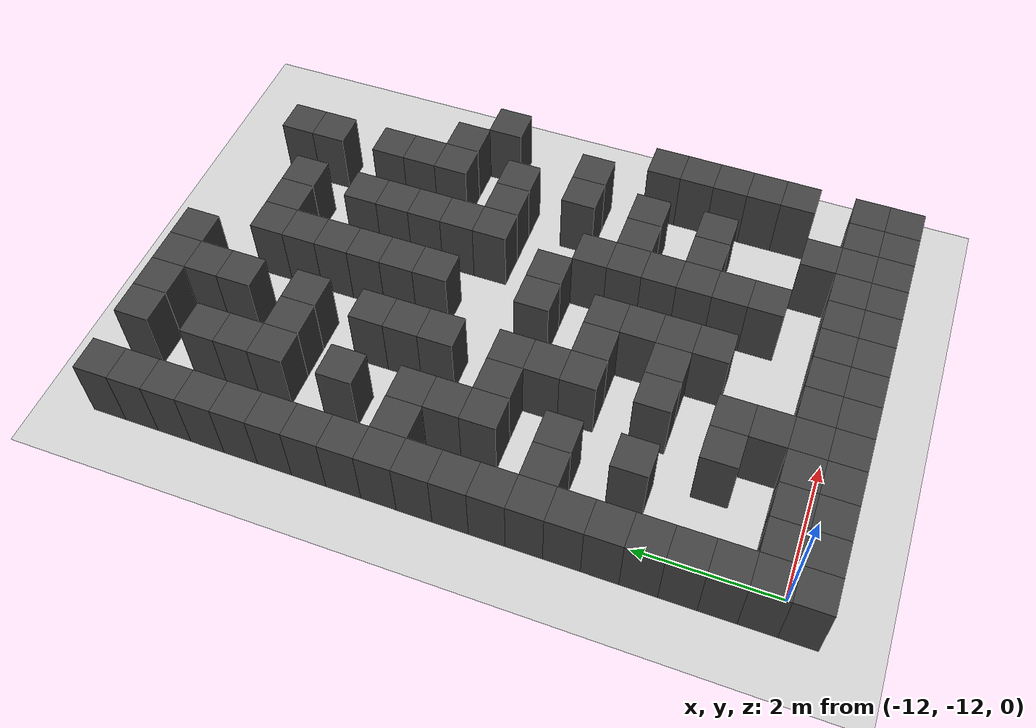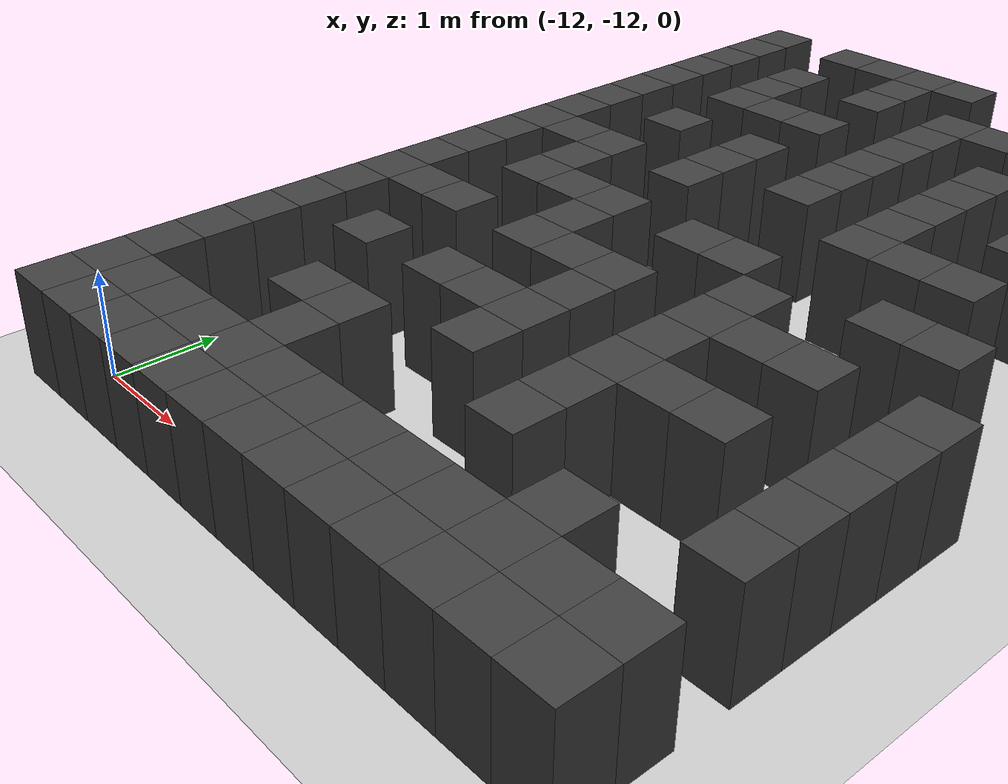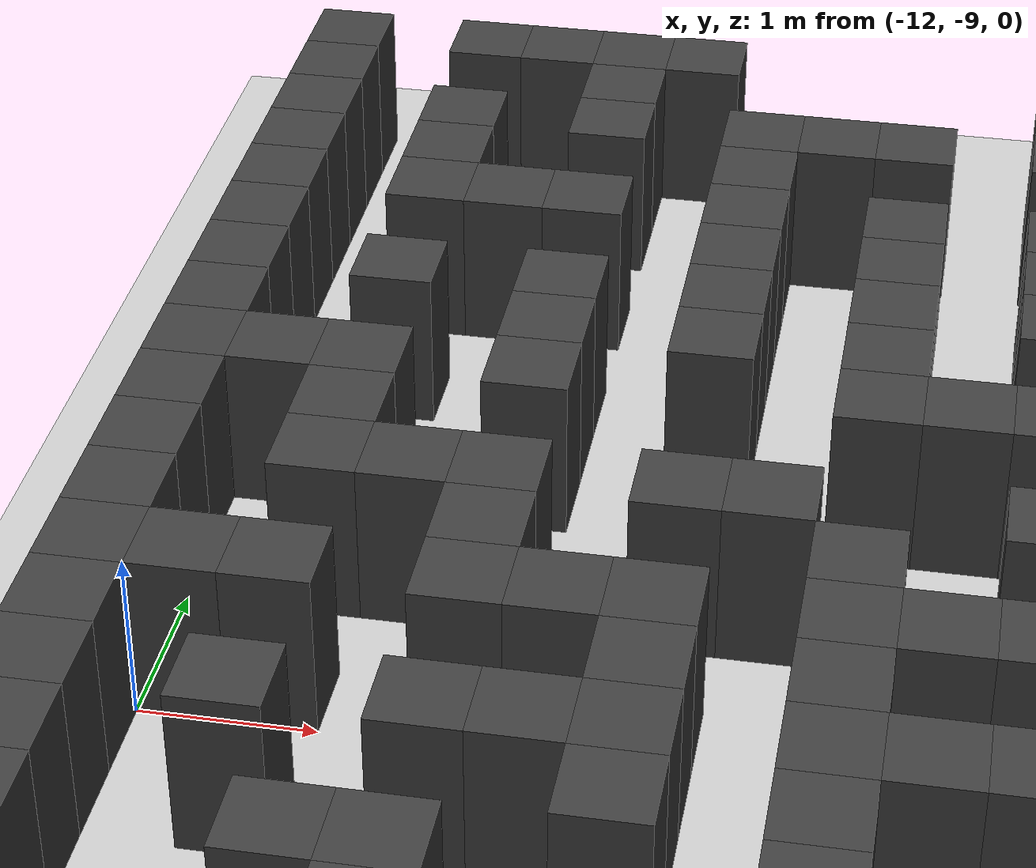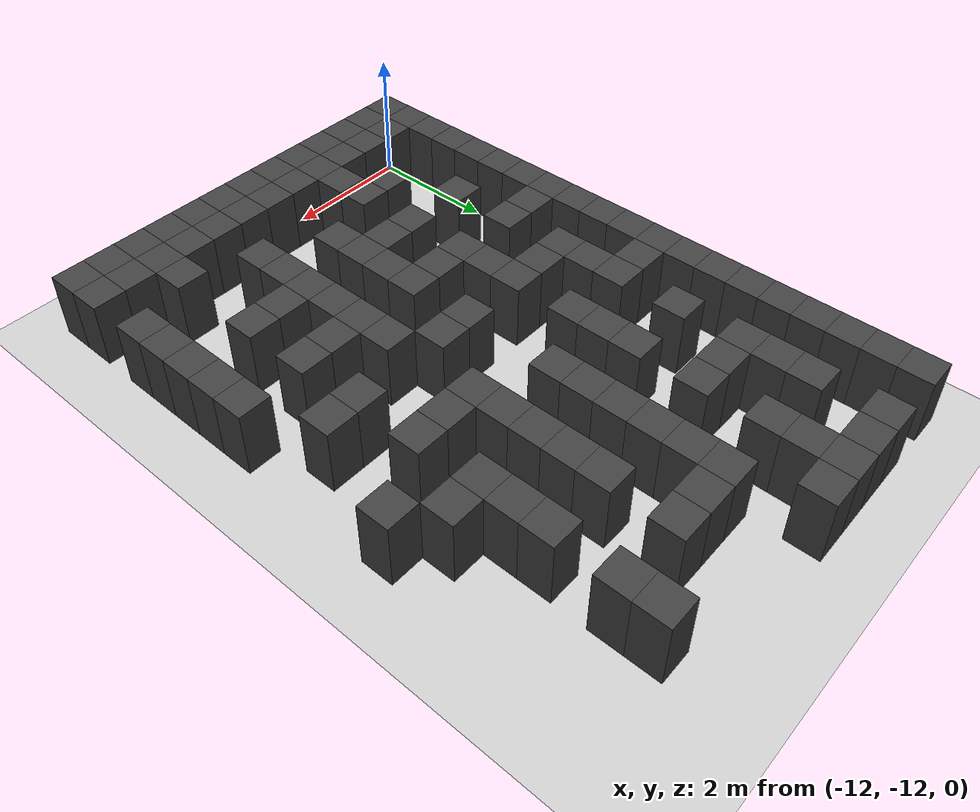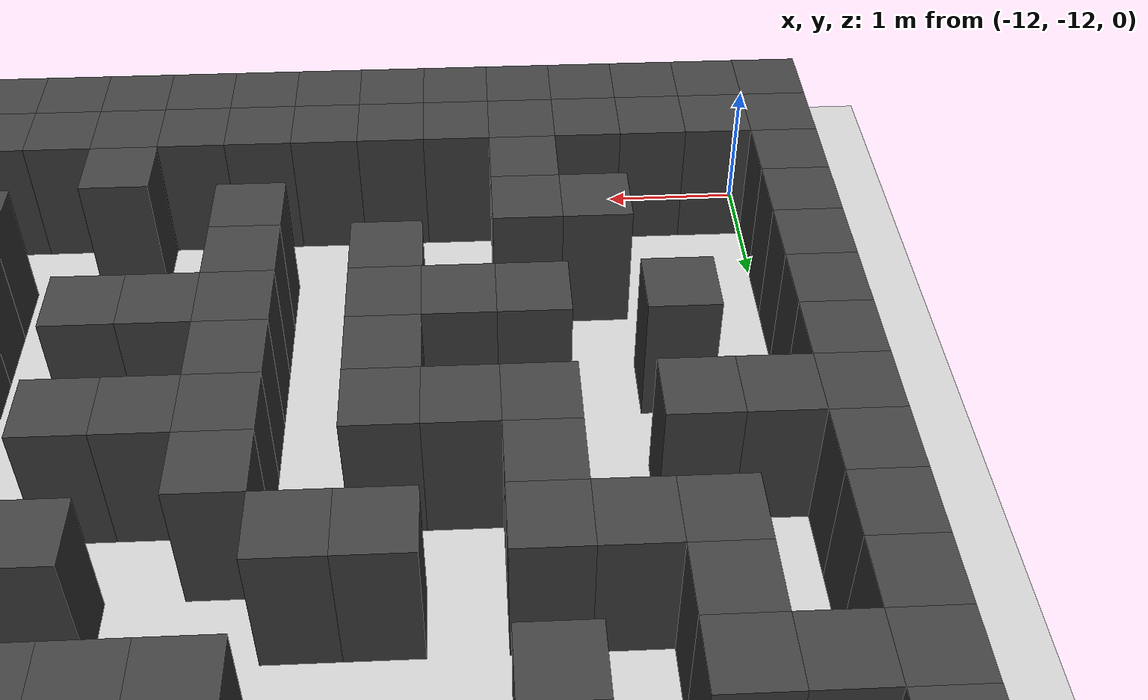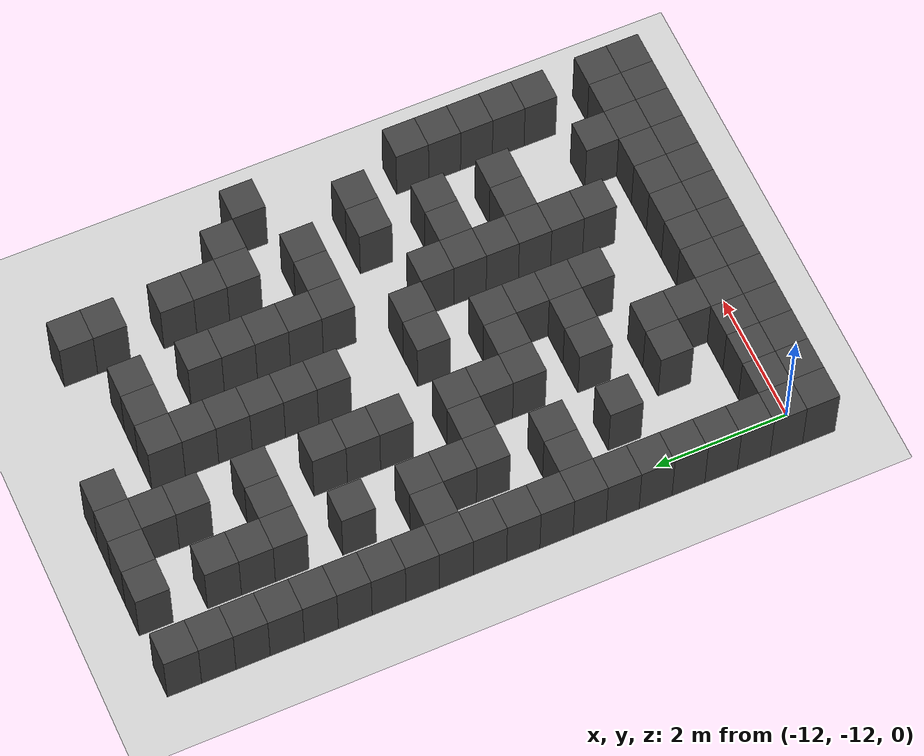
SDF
<sdf version="1.7">
 <world name="map_16048">
  <model name="ground_plane">
   <static>true</static>
   <link name="link">
    <collision name="collision">
     <geometry><plane><normal>0 0 1</normal><size>200 200</size></plane></geometry>
    </collision>
    <visual name="visual">
     <geometry><plane><normal>0 0 1</normal><size>200 200</size></plane></geometry>
     <material><ambient>0.8 0.8 0.8 1</ambient><diffuse>0.8 0.8 0.8 1</diffuse></material>
    </visual>
   </link>
  </model>
  <model name="maze_environment">
   <static>true</static>
   <link name="wall_712">
    <pose>-12.250 -2.750 0.500 0 0 0</pose>
    <collision name="col"><geometry><box><size>0.5 0.5 1.0</size></box></geometry></collision>
    <visual name="vis">
     <geometry><box><size>0.5 0.5 1.0</size></box></geometry>
     <material><ambient>0.15 0.15 0.15 1</ambient><diffuse>0.25 0.25 0.25 1</diffuse></material>
    </visual>
   </link>
   <link name="wall_713">
    <pose>-11.250 -2.750 0.500 0 0 0</pose>
    <collision name="col"><geometry><box><size>0.5 0.5 1.0</size></box></geometry></collision>
    <visual name="vis">
     <geometry><box><size>0.5 0.5 1.0</size></box></geometry>
     <material><ambient>0.15 0.15 0.15 1</ambient><diffuse>0.25 0.25 0.25 1</diffuse></material>
    </visual>
   </link>
   <link name="wall_714">
    <pose>-10.750 -2.750 0.500 0 0 0</pose>
    <collision name="col"><geometry><box><size>0.5 0.5 1.0</size></box></geometry></collision>
    <visual name="vis">
     <geometry><box><size>0.5 0.5 1.0</size></box></geometry>
     <material><ambient>0.15 0.15 0.15 1</ambient><diffuse>0.25 0.25 0.25 1</diffuse></material>
    </visual>
   </link>
   <link name="wall_715">
    <pose>-10.250 -2.750 0.500 0 0 0</pose>
    <collision name="col"><geometry><box><size>0.5 0.5 1.0</size></box></geometry></collision>
    <visual name="vis">
     <geometry><box><size>0.5 0.5 1.0</size></box></geometry>
     <material><ambient>0.15 0.15 0.15 1</ambient><diffuse>0.25 0.25 0.25 1</diffuse></material>
    </visual>
   </link>
   <link name="wall_716">
    <pose>-9.750 -2.750 0.500 0 0 0</pose>
    <collision name="col"><geometry><box><size>0.5 0.5 1.0</size></box></geometry></collision>
    <visual name="vis">
     <geometry><box><size>0.5 0.5 1.0</size></box></geometry>
     <material><ambient>0.15 0.15 0.15 1</ambient><diffuse>0.25 0.25 0.25 1</diffuse></material>
    </visual>
   </link>
   <link name="wall_748">
    <pose>-12.250 -3.250 0.500 0 0 0</pose>
    <collision name="col"><geometry><box><size>0.5 0.5 1.0</size></box></geometry></collision>
    <visual name="vis">
     <geometry><box><size>0.5 0.5 1.0</size></box></geometry>
     <material><ambient>0.15 0.15 0.15 1</ambient><diffuse>0.25 0.25 0.25 1</diffuse></material>
    </visual>
   </link>
   <link name="wall_749">
    <pose>-10.250 -3.250 0.500 0 0 0</pose>
    <collision name="col"><geometry><box><size>0.5 0.5 1.0</size></box></geometry></collision>
    <visual name="vis">
     <geometry><box><size>0.5 0.5 1.0</size></box></geometry>
     <material><ambient>0.15 0.15 0.15 1</ambient><diffuse>0.25 0.25 0.25 1</diffuse></material>
    </visual>
   </link>
   <link name="wall_750">
    <pose>-7.250 -3.250 0.500 0 0 0</pose>
    <collision name="col"><geometry><box><size>0.5 0.5 1.0</size></box></geometry></collision>
    <visual name="vis">
     <geometry><box><size>0.5 0.5 1.0</size></box></geometry>
     <material><ambient>0.15 0.15 0.15 1</ambient><diffuse>0.25 0.25 0.25 1</diffuse></material>
    </visual>
   </link>
   <link name="wall_761">
    <pose>-12.250 -3.750 0.500 0 0 0</pose>
    <collision name="col"><geometry><box><size>0.5 0.5 1.0</size></box></geometry></collision>
    <visual name="vis">
     <geometry><box><size>0.5 0.5 1.0</size></box></geometry>
     <material><ambient>0.15 0.15 0.15 1</ambient><diffuse>0.25 0.25 0.25 1</diffuse></material>
    </visual>
   </link>
   <link name="wall_762">
    <pose>-11.250 -3.750 0.500 0 0 0</pose>
    <collision name="col"><geometry><box><size>0.5 0.5 1.0</size></box></geometry></collision>
    <visual name="vis">
     <geometry><box><size>0.5 0.5 1.0</size></box></geometry>
     <material><ambient>0.15 0.15 0.15 1</ambient><diffuse>0.25 0.25 0.25 1</diffuse></material>
    </visual>
   </link>
   <link name="wall_763">
    <pose>-10.250 -3.750 0.500 0 0 0</pose>
    <collision name="col"><geometry><box><size>0.5 0.5 1.0</size></box></geometry></collision>
    <visual name="vis">
     <geometry><box><size>0.5 0.5 1.0</size></box></geometry>
     <material><ambient>0.15 0.15 0.15 1</ambient><diffuse>0.25 0.25 0.25 1</diffuse></material>
    </visual>
   </link>
   <link name="wall_764">
    <pose>-9.250 -3.750 0.500 0 0 0</pose>
    <collision name="col"><geometry><box><size>0.5 0.5 1.0</size></box></geometry></collision>
    <visual name="vis">
     <geometry><box><size>0.5 0.5 1.0</size></box></geometry>
     <material><ambient>0.15 0.15 0.15 1</ambient><diffuse>0.25 0.25 0.25 1</diffuse></material>
    </visual>
   </link>
   <link name="wall_765">
    <pose>-8.750 -3.750 0.500 0 0 0</pose>
    <collision name="col"><geometry><box><size>0.5 0.5 1.0</size></box></geometry></collision>
    <visual name="vis">
     <geometry><box><size>0.5 0.5 1.0</size></box></geometry>
     <material><ambient>0.15 0.15 0.15 1</ambient><diffuse>0.25 0.25 0.25 1</diffuse></material>
    </visual>
   </link>
   <link name="wall_766">
    <pose>-8.250 -3.750 0.500 0 0 0</pose>
    <collision name="col"><geometry><box><size>0.5 0.5 1.0</size></box></geometry></collision>
    <visual name="vis">
     <geometry><box><size>0.5 0.5 1.0</size></box></geometry>
     <material><ambient>0.15 0.15 0.15 1</ambient><diffuse>0.25 0.25 0.25 1</diffuse></material>
    </visual>
   </link>
   <link name="wall_767">
    <pose>-7.250 -3.750 0.500 0 0 0</pose>
    <collision name="col"><geometry><box><size>0.5 0.5 1.0</size></box></geometry></collision>
    <visual name="vis">
     <geometry><box><size>0.5 0.5 1.0</size></box></geometry>
     <material><ambient>0.15 0.15 0.15 1</ambient><diffuse>0.25 0.25 0.25 1</diffuse></material>
    </visual>
   </link>
   <link name="wall_796">
    <pose>-12.250 -4.250 0.500 0 0 0</pose>
    <collision name="col"><geometry><box><size>0.5 0.5 1.0</size></box></geometry></collision>
    <visual name="vis">
     <geometry><box><size>0.5 0.5 1.0</size></box></geometry>
     <material><ambient>0.15 0.15 0.15 1</ambient><diffuse>0.25 0.25 0.25 1</diffuse></material>
    </visual>
   </link>
   <link name="wall_797">
    <pose>-11.250 -4.250 0.500 0 0 0</pose>
    <collision name="col"><geometry><box><size>0.5 0.5 1.0</size></box></geometry></collision>
    <visual name="vis">
     <geometry><box><size>0.5 0.5 1.0</size></box></geometry>
     <material><ambient>0.15 0.15 0.15 1</ambient><diffuse>0.25 0.25 0.25 1</diffuse></material>
    </visual>
   </link>
   <link name="wall_798">
    <pose>-9.250 -4.250 0.500 0 0 0</pose>
    <collision name="col"><geometry><box><size>0.5 0.5 1.0</size></box></geometry></collision>
    <visual name="vis">
     <geometry><box><size>0.5 0.5 1.0</size></box></geometry>
     <material><ambient>0.15 0.15 0.15 1</ambient><diffuse>0.25 0.25 0.25 1</diffuse></material>
    </visual>
   </link>
   <link name="wall_809">
    <pose>-12.250 -4.750 0.500 0 0 0</pose>
    <collision name="col"><geometry><box><size>0.5 0.5 1.0</size></box></geometry></collision>
    <visual name="vis">
     <geometry><box><size>0.5 0.5 1.0</size></box></geometry>
     <material><ambient>0.15 0.15 0.15 1</ambient><diffuse>0.25 0.25 0.25 1</diffuse></material>
    </visual>
   </link>
   <link name="wall_810">
    <pose>-11.250 -4.750 0.500 0 0 0</pose>
    <collision name="col"><geometry><box><size>0.5 0.5 1.0</size></box></geometry></collision>
    <visual name="vis">
     <geometry><box><size>0.5 0.5 1.0</size></box></geometry>
     <material><ambient>0.15 0.15 0.15 1</ambient><diffuse>0.25 0.25 0.25 1</diffuse></material>
    </visual>
   </link>
   <link name="wall_811">
    <pose>-10.750 -4.750 0.500 0 0 0</pose>
    <collision name="col"><geometry><box><size>0.5 0.5 1.0</size></box></geometry></collision>
    <visual name="vis">
     <geometry><box><size>0.5 0.5 1.0</size></box></geometry>
     <material><ambient>0.15 0.15 0.15 1</ambient><diffuse>0.25 0.25 0.25 1</diffuse></material>
    </visual>
   </link>
   <link name="wall_812">
    <pose>-10.250 -4.750 0.500 0 0 0</pose>
    <collision name="col"><geometry><box><size>0.5 0.5 1.0</size></box></geometry></collision>
    <visual name="vis">
     <geometry><box><size>0.5 0.5 1.0</size></box></geometry>
     <material><ambient>0.15 0.15 0.15 1</ambient><diffuse>0.25 0.25 0.25 1</diffuse></material>
    </visual>
   </link>
   <link name="wall_813">
    <pose>-9.250 -4.750 0.500 0 0 0</pose>
    <collision name="col"><geometry><box><size>0.5 0.5 1.0</size></box></geometry></collision>
    <visual name="vis">
     <geometry><box><size>0.5 0.5 1.0</size></box></geometry>
     <material><ambient>0.15 0.15 0.15 1</ambient><diffuse>0.25 0.25 0.25 1</diffuse></material>
    </visual>
   </link>
   <link name="wall_814">
    <pose>-8.250 -4.750 0.500 0 0 0</pose>
    <collision name="col"><geometry><box><size>0.5 0.5 1.0</size></box></geometry></collision>
    <visual name="vis">
     <geometry><box><size>0.5 0.5 1.0</size></box></geometry>
     <material><ambient>0.15 0.15 0.15 1</ambient><diffuse>0.25 0.25 0.25 1</diffuse></material>
    </visual>
   </link>
   <link name="wall_815">
    <pose>-7.250 -4.750 0.500 0 0 0</pose>
    <collision name="col"><geometry><box><size>0.5 0.5 1.0</size></box></geometry></collision>
    <visual name="vis">
     <geometry><box><size>0.5 0.5 1.0</size></box></geometry>
     <material><ambient>0.15 0.15 0.15 1</ambient><diffuse>0.25 0.25 0.25 1</diffuse></material>
    </visual>
   </link>
   <link name="wall_843">
    <pose>-12.250 -5.250 0.500 0 0 0</pose>
    <collision name="col"><geometry><box><size>0.5 0.5 1.0</size></box></geometry></collision>
    <visual name="vis">
     <geometry><box><size>0.5 0.5 1.0</size></box></geometry>
     <material><ambient>0.15 0.15 0.15 1</ambient><diffuse>0.25 0.25 0.25 1</diffuse></material>
    </visual>
   </link>
   <link name="wall_844">
    <pose>-9.250 -5.250 0.500 0 0 0</pose>
    <collision name="col"><geometry><box><size>0.5 0.5 1.0</size></box></geometry></collision>
    <visual name="vis">
     <geometry><box><size>0.5 0.5 1.0</size></box></geometry>
     <material><ambient>0.15 0.15 0.15 1</ambient><diffuse>0.25 0.25 0.25 1</diffuse></material>
    </visual>
   </link>
   <link name="wall_845">
    <pose>-8.250 -5.250 0.500 0 0 0</pose>
    <collision name="col"><geometry><box><size>0.5 0.5 1.0</size></box></geometry></collision>
    <visual name="vis">
     <geometry><box><size>0.5 0.5 1.0</size></box></geometry>
     <material><ambient>0.15 0.15 0.15 1</ambient><diffuse>0.25 0.25 0.25 1</diffuse></material>
    </visual>
   </link>
   <link name="wall_846">
    <pose>-7.250 -5.250 0.500 0 0 0</pose>
    <collision name="col"><geometry><box><size>0.5 0.5 1.0</size></box></geometry></collision>
    <visual name="vis">
     <geometry><box><size>0.5 0.5 1.0</size></box></geometry>
     <material><ambient>0.15 0.15 0.15 1</ambient><diffuse>0.25 0.25 0.25 1</diffuse></material>
    </visual>
   </link>
   <link name="wall_856">
    <pose>-12.250 -5.750 0.500 0 0 0</pose>
    <collision name="col"><geometry><box><size>0.5 0.5 1.0</size></box></geometry></collision>
    <visual name="vis">
     <geometry><box><size>0.5 0.5 1.0</size></box></geometry>
     <material><ambient>0.15 0.15 0.15 1</ambient><diffuse>0.25 0.25 0.25 1</diffuse></material>
    </visual>
   </link>
   <link name="wall_857">
    <pose>-11.250 -5.750 0.500 0 0 0</pose>
    <collision name="col"><geometry><box><size>0.5 0.5 1.0</size></box></geometry></collision>
    <visual name="vis">
     <geometry><box><size>0.5 0.5 1.0</size></box></geometry>
     <material><ambient>0.15 0.15 0.15 1</ambient><diffuse>0.25 0.25 0.25 1</diffuse></material>
    </visual>
   </link>
   <link name="wall_858">
    <pose>-10.250 -5.750 0.500 0 0 0</pose>
    <collision name="col"><geometry><box><size>0.5 0.5 1.0</size></box></geometry></collision>
    <visual name="vis">
     <geometry><box><size>0.5 0.5 1.0</size></box></geometry>
     <material><ambient>0.15 0.15 0.15 1</ambient><diffuse>0.25 0.25 0.25 1</diffuse></material>
    </visual>
   </link>
   <link name="wall_859">
    <pose>-9.250 -5.750 0.500 0 0 0</pose>
    <collision name="col"><geometry><box><size>0.5 0.5 1.0</size></box></geometry></collision>
    <visual name="vis">
     <geometry><box><size>0.5 0.5 1.0</size></box></geometry>
     <material><ambient>0.15 0.15 0.15 1</ambient><diffuse>0.25 0.25 0.25 1</diffuse></material>
    </visual>
   </link>
   <link name="wall_860">
    <pose>-8.250 -5.750 0.500 0 0 0</pose>
    <collision name="col"><geometry><box><size>0.5 0.5 1.0</size></box></geometry></collision>
    <visual name="vis">
     <geometry><box><size>0.5 0.5 1.0</size></box></geometry>
     <material><ambient>0.15 0.15 0.15 1</ambient><diffuse>0.25 0.25 0.25 1</diffuse></material>
    </visual>
   </link>
   <link name="wall_861">
    <pose>-7.250 -5.750 0.500 0 0 0</pose>
    <collision name="col"><geometry><box><size>0.5 0.5 1.0</size></box></geometry></collision>
    <visual name="vis">
     <geometry><box><size>0.5 0.5 1.0</size></box></geometry>
     <material><ambient>0.15 0.15 0.15 1</ambient><diffuse>0.25 0.25 0.25 1</diffuse></material>
    </visual>
   </link>
   <link name="wall_862">
    <pose>-6.750 -5.750 0.500 0 0 0</pose>
    <collision name="col"><geometry><box><size>0.5 0.5 1.0</size></box></geometry></collision>
    <visual name="vis">
     <geometry><box><size>0.5 0.5 1.0</size></box></geometry>
     <material><ambient>0.15 0.15 0.15 1</ambient><diffuse>0.25 0.25 0.25 1</diffuse></material>
    </visual>
   </link>
   <link name="wall_890">
    <pose>-12.250 -6.250 0.500 0 0 0</pose>
    <collision name="col"><geometry><box><size>0.5 0.5 1.0</size></box></geometry></collision>
    <visual name="vis">
     <geometry><box><size>0.5 0.5 1.0</size></box></geometry>
     <material><ambient>0.15 0.15 0.15 1</ambient><diffuse>0.25 0.25 0.25 1</diffuse></material>
    </visual>
   </link>
   <link name="wall_891">
    <pose>-10.250 -6.250 0.500 0 0 0</pose>
    <collision name="col"><geometry><box><size>0.5 0.5 1.0</size></box></geometry></collision>
    <visual name="vis">
     <geometry><box><size>0.5 0.5 1.0</size></box></geometry>
     <material><ambient>0.15 0.15 0.15 1</ambient><diffuse>0.25 0.25 0.25 1</diffuse></material>
    </visual>
   </link>
   <link name="wall_892">
    <pose>-9.250 -6.250 0.500 0 0 0</pose>
    <collision name="col"><geometry><box><size>0.5 0.5 1.0</size></box></geometry></collision>
    <visual name="vis">
     <geometry><box><size>0.5 0.5 1.0</size></box></geometry>
     <material><ambient>0.15 0.15 0.15 1</ambient><diffuse>0.25 0.25 0.25 1</diffuse></material>
    </visual>
   </link>
   <link name="wall_893">
    <pose>-8.250 -6.250 0.500 0 0 0</pose>
    <collision name="col"><geometry><box><size>0.5 0.5 1.0</size></box></geometry></collision>
    <visual name="vis">
     <geometry><box><size>0.5 0.5 1.0</size></box></geometry>
     <material><ambient>0.15 0.15 0.15 1</ambient><diffuse>0.25 0.25 0.25 1</diffuse></material>
    </visual>
   </link>
   <link name="wall_894">
    <pose>-6.250 -6.250 0.500 0 0 0</pose>
    <collision name="col"><geometry><box><size>0.5 0.5 1.0</size></box></geometry></collision>
    <visual name="vis">
     <geometry><box><size>0.5 0.5 1.0</size></box></geometry>
     <material><ambient>0.15 0.15 0.15 1</ambient><diffuse>0.25 0.25 0.25 1</diffuse></material>
    </visual>
   </link>
   <link name="wall_905">
    <pose>-12.250 -6.750 0.500 0 0 0</pose>
    <collision name="col"><geometry><box><size>0.5 0.5 1.0</size></box></geometry></collision>
    <visual name="vis">
     <geometry><box><size>0.5 0.5 1.0</size></box></geometry>
     <material><ambient>0.15 0.15 0.15 1</ambient><diffuse>0.25 0.25 0.25 1</diffuse></material>
    </visual>
   </link>
   <link name="wall_906">
    <pose>-11.750 -6.750 0.500 0 0 0</pose>
    <collision name="col"><geometry><box><size>0.5 0.5 1.0</size></box></geometry></collision>
    <visual name="vis">
     <geometry><box><size>0.5 0.5 1.0</size></box></geometry>
     <material><ambient>0.15 0.15 0.15 1</ambient><diffuse>0.25 0.25 0.25 1</diffuse></material>
    </visual>
   </link>
   <link name="wall_907">
    <pose>-11.250 -6.750 0.500 0 0 0</pose>
    <collision name="col"><geometry><box><size>0.5 0.5 1.0</size></box></geometry></collision>
    <visual name="vis">
     <geometry><box><size>0.5 0.5 1.0</size></box></geometry>
     <material><ambient>0.15 0.15 0.15 1</ambient><diffuse>0.25 0.25 0.25 1</diffuse></material>
    </visual>
   </link>
   <link name="wall_908">
    <pose>-10.250 -6.750 0.500 0 0 0</pose>
    <collision name="col"><geometry><box><size>0.5 0.5 1.0</size></box></geometry></collision>
    <visual name="vis">
     <geometry><box><size>0.5 0.5 1.0</size></box></geometry>
     <material><ambient>0.15 0.15 0.15 1</ambient><diffuse>0.25 0.25 0.25 1</diffuse></material>
    </visual>
   </link>
   <link name="wall_909">
    <pose>-8.250 -6.750 0.500 0 0 0</pose>
    <collision name="col"><geometry><box><size>0.5 0.5 1.0</size></box></geometry></collision>
    <visual name="vis">
     <geometry><box><size>0.5 0.5 1.0</size></box></geometry>
     <material><ambient>0.15 0.15 0.15 1</ambient><diffuse>0.25 0.25 0.25 1</diffuse></material>
    </visual>
   </link>
   <link name="wall_910">
    <pose>-7.750 -6.750 0.500 0 0 0</pose>
    <collision name="col"><geometry><box><size>0.5 0.5 1.0</size></box></geometry></collision>
    <visual name="vis">
     <geometry><box><size>0.5 0.5 1.0</size></box></geometry>
     <material><ambient>0.15 0.15 0.15 1</ambient><diffuse>0.25 0.25 0.25 1</diffuse></material>
    </visual>
   </link>
   <link name="wall_911">
    <pose>-7.250 -6.750 0.500 0 0 0</pose>
    <collision name="col"><geometry><box><size>0.5 0.5 1.0</size></box></geometry></collision>
    <visual name="vis">
     <geometry><box><size>0.5 0.5 1.0</size></box></geometry>
     <material><ambient>0.15 0.15 0.15 1</ambient><diffuse>0.25 0.25 0.25 1</diffuse></material>
    </visual>
   </link>
   <link name="wall_936">
    <pose>-12.250 -7.250 0.500 0 0 0</pose>
    <collision name="col"><geometry><box><size>0.5 0.5 1.0</size></box></geometry></collision>
    <visual name="vis">
     <geometry><box><size>0.5 0.5 1.0</size></box></geometry>
     <material><ambient>0.15 0.15 0.15 1</ambient><diffuse>0.25 0.25 0.25 1</diffuse></material>
    </visual>
   </link>
   <link name="wall_937">
    <pose>-11.250 -7.250 0.500 0 0 0</pose>
    <collision name="col"><geometry><box><size>0.5 0.5 1.0</size></box></geometry></collision>
    <visual name="vis">
     <geometry><box><size>0.5 0.5 1.0</size></box></geometry>
     <material><ambient>0.15 0.15 0.15 1</ambient><diffuse>0.25 0.25 0.25 1</diffuse></material>
    </visual>
   </link>
   <link name="wall_946">
    <pose>-12.250 -7.750 0.500 0 0 0</pose>
    <collision name="col"><geometry><box><size>0.5 0.5 1.0</size></box></geometry></collision>
    <visual name="vis">
     <geometry><box><size>0.5 0.5 1.0</size></box></geometry>
     <material><ambient>0.15 0.15 0.15 1</ambient><diffuse>0.25 0.25 0.25 1</diffuse></material>
    </visual>
   </link>
   <link name="wall_947">
    <pose>-11.250 -7.750 0.500 0 0 0</pose>
    <collision name="col"><geometry><box><size>0.5 0.5 1.0</size></box></geometry></collision>
    <visual name="vis">
     <geometry><box><size>0.5 0.5 1.0</size></box></geometry>
     <material><ambient>0.15 0.15 0.15 1</ambient><diffuse>0.25 0.25 0.25 1</diffuse></material>
    </visual>
   </link>
   <link name="wall_948">
    <pose>-10.750 -7.750 0.500 0 0 0</pose>
    <collision name="col"><geometry><box><size>0.5 0.5 1.0</size></box></geometry></collision>
    <visual name="vis">
     <geometry><box><size>0.5 0.5 1.0</size></box></geometry>
     <material><ambient>0.15 0.15 0.15 1</ambient><diffuse>0.25 0.25 0.25 1</diffuse></material>
    </visual>
   </link>
   <link name="wall_949">
    <pose>-10.250 -7.750 0.500 0 0 0</pose>
    <collision name="col"><geometry><box><size>0.5 0.5 1.0</size></box></geometry></collision>
    <visual name="vis">
     <geometry><box><size>0.5 0.5 1.0</size></box></geometry>
     <material><ambient>0.15 0.15 0.15 1</ambient><diffuse>0.25 0.25 0.25 1</diffuse></material>
    </visual>
   </link>
   <link name="wall_950">
    <pose>-9.250 -7.750 0.500 0 0 0</pose>
    <collision name="col"><geometry><box><size>0.5 0.5 1.0</size></box></geometry></collision>
    <visual name="vis">
     <geometry><box><size>0.5 0.5 1.0</size></box></geometry>
     <material><ambient>0.15 0.15 0.15 1</ambient><diffuse>0.25 0.25 0.25 1</diffuse></material>
    </visual>
   </link>
   <link name="wall_951">
    <pose>-8.750 -7.750 0.500 0 0 0</pose>
    <collision name="col"><geometry><box><size>0.5 0.5 1.0</size></box></geometry></collision>
    <visual name="vis">
     <geometry><box><size>0.5 0.5 1.0</size></box></geometry>
     <material><ambient>0.15 0.15 0.15 1</ambient><diffuse>0.25 0.25 0.25 1</diffuse></material>
    </visual>
   </link>
   <link name="wall_952">
    <pose>-7.250 -7.750 0.500 0 0 0</pose>
    <collision name="col"><geometry><box><size>0.5 0.5 1.0</size></box></geometry></collision>
    <visual name="vis">
     <geometry><box><size>0.5 0.5 1.0</size></box></geometry>
     <material><ambient>0.15 0.15 0.15 1</ambient><diffuse>0.25 0.25 0.25 1</diffuse></material>
    </visual>
   </link>
   <link name="wall_953">
    <pose>-6.750 -7.750 0.500 0 0 0</pose>
    <collision name="col"><geometry><box><size>0.5 0.5 1.0</size></box></geometry></collision>
    <visual name="vis">
     <geometry><box><size>0.5 0.5 1.0</size></box></geometry>
     <material><ambient>0.15 0.15 0.15 1</ambient><diffuse>0.25 0.25 0.25 1</diffuse></material>
    </visual>
   </link>
   <link name="wall_981">
    <pose>-12.250 -8.250 0.500 0 0 0</pose>
    <collision name="col"><geometry><box><size>0.5 0.5 1.0</size></box></geometry></collision>
    <visual name="vis">
     <geometry><box><size>0.5 0.5 1.0</size></box></geometry>
     <material><ambient>0.15 0.15 0.15 1</ambient><diffuse>0.25 0.25 0.25 1</diffuse></material>
    </visual>
   </link>
   <link name="wall_982">
    <pose>-10.250 -8.250 0.500 0 0 0</pose>
    <collision name="col"><geometry><box><size>0.5 0.5 1.0</size></box></geometry></collision>
    <visual name="vis">
     <geometry><box><size>0.5 0.5 1.0</size></box></geometry>
     <material><ambient>0.15 0.15 0.15 1</ambient><diffuse>0.25 0.25 0.25 1</diffuse></material>
    </visual>
   </link>
   <link name="wall_983">
    <pose>-8.250 -8.250 0.500 0 0 0</pose>
    <collision name="col"><geometry><box><size>0.5 0.5 1.0</size></box></geometry></collision>
    <visual name="vis">
     <geometry><box><size>0.5 0.5 1.0</size></box></geometry>
     <material><ambient>0.15 0.15 0.15 1</ambient><diffuse>0.25 0.25 0.25 1</diffuse></material>
    </visual>
   </link>
   <link name="wall_995">
    <pose>-12.250 -8.750 0.500 0 0 0</pose>
    <collision name="col"><geometry><box><size>0.5 0.5 1.0</size></box></geometry></collision>
    <visual name="vis">
     <geometry><box><size>0.5 0.5 1.0</size></box></geometry>
     <material><ambient>0.15 0.15 0.15 1</ambient><diffuse>0.25 0.25 0.25 1</diffuse></material>
    </visual>
   </link>
   <link name="wall_996">
    <pose>-11.750 -8.750 0.500 0 0 0</pose>
    <collision name="col"><geometry><box><size>0.5 0.5 1.0</size></box></geometry></collision>
    <visual name="vis">
     <geometry><box><size>0.5 0.5 1.0</size></box></geometry>
     <material><ambient>0.15 0.15 0.15 1</ambient><diffuse>0.25 0.25 0.25 1</diffuse></material>
    </visual>
   </link>
   <link name="wall_997">
    <pose>-11.250 -8.750 0.500 0 0 0</pose>
    <collision name="col"><geometry><box><size>0.5 0.5 1.0</size></box></geometry></collision>
    <visual name="vis">
     <geometry><box><size>0.5 0.5 1.0</size></box></geometry>
     <material><ambient>0.15 0.15 0.15 1</ambient><diffuse>0.25 0.25 0.25 1</diffuse></material>
    </visual>
   </link>
   <link name="wall_998">
    <pose>-10.250 -8.750 0.500 0 0 0</pose>
    <collision name="col"><geometry><box><size>0.5 0.5 1.0</size></box></geometry></collision>
    <visual name="vis">
     <geometry><box><size>0.5 0.5 1.0</size></box></geometry>
     <material><ambient>0.15 0.15 0.15 1</ambient><diffuse>0.25 0.25 0.25 1</diffuse></material>
    </visual>
   </link>
   <link name="wall_999">
    <pose>-9.750 -8.750 0.500 0 0 0</pose>
    <collision name="col"><geometry><box><size>0.5 0.5 1.0</size></box></geometry></collision>
    <visual name="vis">
     <geometry><box><size>0.5 0.5 1.0</size></box></geometry>
     <material><ambient>0.15 0.15 0.15 1</ambient><diffuse>0.25 0.25 0.25 1</diffuse></material>
    </visual>
   </link>
   <link name="wall_1000">
    <pose>-9.250 -8.750 0.500 0 0 0</pose>
    <collision name="col"><geometry><box><size>0.5 0.5 1.0</size></box></geometry></collision>
    <visual name="vis">
     <geometry><box><size>0.5 0.5 1.0</size></box></geometry>
     <material><ambient>0.15 0.15 0.15 1</ambient><diffuse>0.25 0.25 0.25 1</diffuse></material>
    </visual>
   </link>
   <link name="wall_1001">
    <pose>-8.250 -8.750 0.500 0 0 0</pose>
    <collision name="col"><geometry><box><size>0.5 0.5 1.0</size></box></geometry></collision>
    <visual name="vis">
     <geometry><box><size>0.5 0.5 1.0</size></box></geometry>
     <material><ambient>0.15 0.15 0.15 1</ambient><diffuse>0.25 0.25 0.25 1</diffuse></material>
    </visual>
   </link>
   <link name="wall_1002">
    <pose>-7.750 -8.750 0.500 0 0 0</pose>
    <collision name="col"><geometry><box><size>0.5 0.5 1.0</size></box></geometry></collision>
    <visual name="vis">
     <geometry><box><size>0.5 0.5 1.0</size></box></geometry>
     <material><ambient>0.15 0.15 0.15 1</ambient><diffuse>0.25 0.25 0.25 1</diffuse></material>
    </visual>
   </link>
   <link name="wall_1003">
    <pose>-7.250 -8.750 0.500 0 0 0</pose>
    <collision name="col"><geometry><box><size>0.5 0.5 1.0</size></box></geometry></collision>
    <visual name="vis">
     <geometry><box><size>0.5 0.5 1.0</size></box></geometry>
     <material><ambient>0.15 0.15 0.15 1</ambient><diffuse>0.25 0.25 0.25 1</diffuse></material>
    </visual>
   </link>
   <link name="wall_1004">
    <pose>-6.250 -8.750 0.500 0 0 0</pose>
    <collision name="col"><geometry><box><size>0.5 0.5 1.0</size></box></geometry></collision>
    <visual name="vis">
     <geometry><box><size>0.5 0.5 1.0</size></box></geometry>
     <material><ambient>0.15 0.15 0.15 1</ambient><diffuse>0.25 0.25 0.25 1</diffuse></material>
    </visual>
   </link>
   <link name="wall_1031">
    <pose>-12.250 -9.250 0.500 0 0 0</pose>
    <collision name="col"><geometry><box><size>0.5 0.5 1.0</size></box></geometry></collision>
    <visual name="vis">
     <geometry><box><size>0.5 0.5 1.0</size></box></geometry>
     <material><ambient>0.15 0.15 0.15 1</ambient><diffuse>0.25 0.25 0.25 1</diffuse></material>
    </visual>
   </link>
   <link name="wall_1032">
    <pose>-9.250 -9.250 0.500 0 0 0</pose>
    <collision name="col"><geometry><box><size>0.5 0.5 1.0</size></box></geometry></collision>
    <visual name="vis">
     <geometry><box><size>0.5 0.5 1.0</size></box></geometry>
     <material><ambient>0.15 0.15 0.15 1</ambient><diffuse>0.25 0.25 0.25 1</diffuse></material>
    </visual>
   </link>
   <link name="wall_1033">
    <pose>-8.250 -9.250 0.500 0 0 0</pose>
    <collision name="col"><geometry><box><size>0.5 0.5 1.0</size></box></geometry></collision>
    <visual name="vis">
     <geometry><box><size>0.5 0.5 1.0</size></box></geometry>
     <material><ambient>0.15 0.15 0.15 1</ambient><diffuse>0.25 0.25 0.25 1</diffuse></material>
    </visual>
   </link>
   <link name="wall_1034">
    <pose>-6.250 -9.250 0.500 0 0 0</pose>
    <collision name="col"><geometry><box><size>0.5 0.5 1.0</size></box></geometry></collision>
    <visual name="vis">
     <geometry><box><size>0.5 0.5 1.0</size></box></geometry>
     <material><ambient>0.15 0.15 0.15 1</ambient><diffuse>0.25 0.25 0.25 1</diffuse></material>
    </visual>
   </link>
   <link name="wall_1041">
    <pose>-12.250 -9.750 0.500 0 0 0</pose>
    <collision name="col"><geometry><box><size>0.5 0.5 1.0</size></box></geometry></collision>
    <visual name="vis">
     <geometry><box><size>0.5 0.5 1.0</size></box></geometry>
     <material><ambient>0.15 0.15 0.15 1</ambient><diffuse>0.25 0.25 0.25 1</diffuse></material>
    </visual>
   </link>
   <link name="wall_1042">
    <pose>-11.250 -9.750 0.500 0 0 0</pose>
    <collision name="col"><geometry><box><size>0.5 0.5 1.0</size></box></geometry></collision>
    <visual name="vis">
     <geometry><box><size>0.5 0.5 1.0</size></box></geometry>
     <material><ambient>0.15 0.15 0.15 1</ambient><diffuse>0.25 0.25 0.25 1</diffuse></material>
    </visual>
   </link>
   <link name="wall_1043">
    <pose>-10.250 -9.750 0.500 0 0 0</pose>
    <collision name="col"><geometry><box><size>0.5 0.5 1.0</size></box></geometry></collision>
    <visual name="vis">
     <geometry><box><size>0.5 0.5 1.0</size></box></geometry>
     <material><ambient>0.15 0.15 0.15 1</ambient><diffuse>0.25 0.25 0.25 1</diffuse></material>
    </visual>
   </link>
   <link name="wall_1044">
    <pose>-9.750 -9.750 0.500 0 0 0</pose>
    <collision name="col"><geometry><box><size>0.5 0.5 1.0</size></box></geometry></collision>
    <visual name="vis">
     <geometry><box><size>0.5 0.5 1.0</size></box></geometry>
     <material><ambient>0.15 0.15 0.15 1</ambient><diffuse>0.25 0.25 0.25 1</diffuse></material>
    </visual>
   </link>
   <link name="wall_1045">
    <pose>-9.250 -9.750 0.500 0 0 0</pose>
    <collision name="col"><geometry><box><size>0.5 0.5 1.0</size></box></geometry></collision>
    <visual name="vis">
     <geometry><box><size>0.5 0.5 1.0</size></box></geometry>
     <material><ambient>0.15 0.15 0.15 1</ambient><diffuse>0.25 0.25 0.25 1</diffuse></material>
    </visual>
   </link>
   <link name="wall_1046">
    <pose>-8.250 -9.750 0.500 0 0 0</pose>
    <collision name="col"><geometry><box><size>0.5 0.5 1.0</size></box></geometry></collision>
    <visual name="vis">
     <geometry><box><size>0.5 0.5 1.0</size></box></geometry>
     <material><ambient>0.15 0.15 0.15 1</ambient><diffuse>0.25 0.25 0.25 1</diffuse></material>
    </visual>
   </link>
   <link name="wall_1047">
    <pose>-7.750 -9.750 0.500 0 0 0</pose>
    <collision name="col"><geometry><box><size>0.5 0.5 1.0</size></box></geometry></collision>
    <visual name="vis">
     <geometry><box><size>0.5 0.5 1.0</size></box></geometry>
     <material><ambient>0.15 0.15 0.15 1</ambient><diffuse>0.25 0.25 0.25 1</diffuse></material>
    </visual>
   </link>
   <link name="wall_1048">
    <pose>-7.250 -9.750 0.500 0 0 0</pose>
    <collision name="col"><geometry><box><size>0.5 0.5 1.0</size></box></geometry></collision>
    <visual name="vis">
     <geometry><box><size>0.5 0.5 1.0</size></box></geometry>
     <material><ambient>0.15 0.15 0.15 1</ambient><diffuse>0.25 0.25 0.25 1</diffuse></material>
    </visual>
   </link>
   <link name="wall_1049">
    <pose>-6.250 -9.750 0.500 0 0 0</pose>
    <collision name="col"><geometry><box><size>0.5 0.5 1.0</size></box></geometry></collision>
    <visual name="vis">
     <geometry><box><size>0.5 0.5 1.0</size></box></geometry>
     <material><ambient>0.15 0.15 0.15 1</ambient><diffuse>0.25 0.25 0.25 1</diffuse></material>
    </visual>
   </link>
   <link name="wall_1083">
    <pose>-12.250 -10.250 0.500 0 0 0</pose>
    <collision name="col"><geometry><box><size>0.5 0.5 1.0</size></box></geometry></collision>
    <visual name="vis">
     <geometry><box><size>0.5 0.5 1.0</size></box></geometry>
     <material><ambient>0.15 0.15 0.15 1</ambient><diffuse>0.25 0.25 0.25 1</diffuse></material>
    </visual>
   </link>
   <link name="wall_1084">
    <pose>-9.250 -10.250 0.500 0 0 0</pose>
    <collision name="col"><geometry><box><size>0.5 0.5 1.0</size></box></geometry></collision>
    <visual name="vis">
     <geometry><box><size>0.5 0.5 1.0</size></box></geometry>
     <material><ambient>0.15 0.15 0.15 1</ambient><diffuse>0.25 0.25 0.25 1</diffuse></material>
    </visual>
   </link>
   <link name="wall_1085">
    <pose>-8.250 -10.250 0.500 0 0 0</pose>
    <collision name="col"><geometry><box><size>0.5 0.5 1.0</size></box></geometry></collision>
    <visual name="vis">
     <geometry><box><size>0.5 0.5 1.0</size></box></geometry>
     <material><ambient>0.15 0.15 0.15 1</ambient><diffuse>0.25 0.25 0.25 1</diffuse></material>
    </visual>
   </link>
   <link name="wall_1086">
    <pose>-6.250 -10.250 0.500 0 0 0</pose>
    <collision name="col"><geometry><box><size>0.5 0.5 1.0</size></box></geometry></collision>
    <visual name="vis">
     <geometry><box><size>0.5 0.5 1.0</size></box></geometry>
     <material><ambient>0.15 0.15 0.15 1</ambient><diffuse>0.25 0.25 0.25 1</diffuse></material>
    </visual>
   </link>
   <link name="wall_1095">
    <pose>-12.250 -10.750 0.500 0 0 0</pose>
    <collision name="col"><geometry><box><size>0.5 0.5 1.0</size></box></geometry></collision>
    <visual name="vis">
     <geometry><box><size>0.5 0.5 1.0</size></box></geometry>
     <material><ambient>0.15 0.15 0.15 1</ambient><diffuse>0.25 0.25 0.25 1</diffuse></material>
    </visual>
   </link>
   <link name="wall_1096">
    <pose>-10.750 -10.750 0.500 0 0 0</pose>
    <collision name="col"><geometry><box><size>0.5 0.5 1.0</size></box></geometry></collision>
    <visual name="vis">
     <geometry><box><size>0.5 0.5 1.0</size></box></geometry>
     <material><ambient>0.15 0.15 0.15 1</ambient><diffuse>0.25 0.25 0.25 1</diffuse></material>
    </visual>
   </link>
   <link name="wall_1097">
    <pose>-10.250 -10.750 0.500 0 0 0</pose>
    <collision name="col"><geometry><box><size>0.5 0.5 1.0</size></box></geometry></collision>
    <visual name="vis">
     <geometry><box><size>0.5 0.5 1.0</size></box></geometry>
     <material><ambient>0.15 0.15 0.15 1</ambient><diffuse>0.25 0.25 0.25 1</diffuse></material>
    </visual>
   </link>
   <link name="wall_1098">
    <pose>-8.250 -10.750 0.500 0 0 0</pose>
    <collision name="col"><geometry><box><size>0.5 0.5 1.0</size></box></geometry></collision>
    <visual name="vis">
     <geometry><box><size>0.5 0.5 1.0</size></box></geometry>
     <material><ambient>0.15 0.15 0.15 1</ambient><diffuse>0.25 0.25 0.25 1</diffuse></material>
    </visual>
   </link>
   <link name="wall_1099">
    <pose>-6.250 -10.750 0.500 0 0 0</pose>
    <collision name="col"><geometry><box><size>0.5 0.5 1.0</size></box></geometry></collision>
    <visual name="vis">
     <geometry><box><size>0.5 0.5 1.0</size></box></geometry>
     <material><ambient>0.15 0.15 0.15 1</ambient><diffuse>0.25 0.25 0.25 1</diffuse></material>
    </visual>
   </link>
   <link name="wall_1120">
    <pose>-12.250 -11.250 0.500 0 0 0</pose>
    <collision name="col"><geometry><box><size>0.5 0.5 1.0</size></box></geometry></collision>
    <visual name="vis">
     <geometry><box><size>0.5 0.5 1.0</size></box></geometry>
     <material><ambient>0.15 0.15 0.15 1</ambient><diffuse>0.25 0.25 0.25 1</diffuse></material>
    </visual>
   </link>
   <link name="wall_1121">
    <pose>-10.250 -11.250 0.500 0 0 0</pose>
    <collision name="col"><geometry><box><size>0.5 0.5 1.0</size></box></geometry></collision>
    <visual name="vis">
     <geometry><box><size>0.5 0.5 1.0</size></box></geometry>
     <material><ambient>0.15 0.15 0.15 1</ambient><diffuse>0.25 0.25 0.25 1</diffuse></material>
    </visual>
   </link>
   <link name="wall_1122">
    <pose>-7.250 -11.250 0.500 0 0 0</pose>
    <collision name="col"><geometry><box><size>0.5 0.5 1.0</size></box></geometry></collision>
    <visual name="vis">
     <geometry><box><size>0.5 0.5 1.0</size></box></geometry>
     <material><ambient>0.15 0.15 0.15 1</ambient><diffuse>0.25 0.25 0.25 1</diffuse></material>
    </visual>
   </link>
   <link name="wall_1128">
    <pose>-12.250 -11.750 0.500 0 0 0</pose>
    <collision name="col"><geometry><box><size>0.5 0.5 1.0</size></box></geometry></collision>
    <visual name="vis">
     <geometry><box><size>0.5 0.5 1.0</size></box></geometry>
     <material><ambient>0.15 0.15 0.15 1</ambient><diffuse>0.25 0.25 0.25 1</diffuse></material>
    </visual>
   </link>
   <link name="wall_1129">
    <pose>-11.750 -11.750 0.500 0 0 0</pose>
    <collision name="col"><geometry><box><size>0.5 0.5 1.0</size></box></geometry></collision>
    <visual name="vis">
     <geometry><box><size>0.5 0.5 1.0</size></box></geometry>
     <material><ambient>0.15 0.15 0.15 1</ambient><diffuse>0.25 0.25 0.25 1</diffuse></material>
    </visual>
   </link>
   <link name="wall_1130">
    <pose>-11.250 -11.750 0.500 0 0 0</pose>
    <collision name="col"><geometry><box><size>0.5 0.5 1.0</size></box></geometry></collision>
    <visual name="vis">
     <geometry><box><size>0.5 0.5 1.0</size></box></geometry>
     <material><ambient>0.15 0.15 0.15 1</ambient><diffuse>0.25 0.25 0.25 1</diffuse></material>
    </visual>
   </link>
   <link name="wall_1131">
    <pose>-10.750 -11.750 0.500 0 0 0</pose>
    <collision name="col"><geometry><box><size>0.5 0.5 1.0</size></box></geometry></collision>
    <visual name="vis">
     <geometry><box><size>0.5 0.5 1.0</size></box></geometry>
     <material><ambient>0.15 0.15 0.15 1</ambient><diffuse>0.25 0.25 0.25 1</diffuse></material>
    </visual>
   </link>
   <link name="wall_1132">
    <pose>-10.250 -11.750 0.500 0 0 0</pose>
    <collision name="col"><geometry><box><size>0.5 0.5 1.0</size></box></geometry></collision>
    <visual name="vis">
     <geometry><box><size>0.5 0.5 1.0</size></box></geometry>
     <material><ambient>0.15 0.15 0.15 1</ambient><diffuse>0.25 0.25 0.25 1</diffuse></material>
    </visual>
   </link>
   <link name="wall_1133">
    <pose>-9.750 -11.750 0.500 0 0 0</pose>
    <collision name="col"><geometry><box><size>0.5 0.5 1.0</size></box></geometry></collision>
    <visual name="vis">
     <geometry><box><size>0.5 0.5 1.0</size></box></geometry>
     <material><ambient>0.15 0.15 0.15 1</ambient><diffuse>0.25 0.25 0.25 1</diffuse></material>
    </visual>
   </link>
   <link name="wall_1134">
    <pose>-9.250 -11.750 0.500 0 0 0</pose>
    <collision name="col"><geometry><box><size>0.5 0.5 1.0</size></box></geometry></collision>
    <visual name="vis">
     <geometry><box><size>0.5 0.5 1.0</size></box></geometry>
     <material><ambient>0.15 0.15 0.15 1</ambient><diffuse>0.25 0.25 0.25 1</diffuse></material>
    </visual>
   </link>
   <link name="wall_1135">
    <pose>-8.750 -11.750 0.500 0 0 0</pose>
    <collision name="col"><geometry><box><size>0.5 0.5 1.0</size></box></geometry></collision>
    <visual name="vis">
     <geometry><box><size>0.5 0.5 1.0</size></box></geometry>
     <material><ambient>0.15 0.15 0.15 1</ambient><diffuse>0.25 0.25 0.25 1</diffuse></material>
    </visual>
   </link>
   <link name="wall_1136">
    <pose>-8.250 -11.750 0.500 0 0 0</pose>
    <collision name="col"><geometry><box><size>0.5 0.5 1.0</size></box></geometry></collision>
    <visual name="vis">
     <geometry><box><size>0.5 0.5 1.0</size></box></geometry>
     <material><ambient>0.15 0.15 0.15 1</ambient><diffuse>0.25 0.25 0.25 1</diffuse></material>
    </visual>
   </link>
   <link name="wall_1137">
    <pose>-7.750 -11.750 0.500 0 0 0</pose>
    <collision name="col"><geometry><box><size>0.5 0.5 1.0</size></box></geometry></collision>
    <visual name="vis">
     <geometry><box><size>0.5 0.5 1.0</size></box></geometry>
     <material><ambient>0.15 0.15 0.15 1</ambient><diffuse>0.25 0.25 0.25 1</diffuse></material>
    </visual>
   </link>
   <link name="wall_1138">
    <pose>-7.250 -11.750 0.500 0 0 0</pose>
    <collision name="col"><geometry><box><size>0.5 0.5 1.0</size></box></geometry></collision>
    <visual name="vis">
     <geometry><box><size>0.5 0.5 1.0</size></box></geometry>
     <material><ambient>0.15 0.15 0.15 1</ambient><diffuse>0.25 0.25 0.25 1</diffuse></material>
    </visual>
   </link>
   <link name="wall_1139">
    <pose>-6.750 -11.750 0.500 0 0 0</pose>
    <collision name="col"><geometry><box><size>0.5 0.5 1.0</size></box></geometry></collision>
    <visual name="vis">
     <geometry><box><size>0.5 0.5 1.0</size></box></geometry>
     <material><ambient>0.15 0.15 0.15 1</ambient><diffuse>0.25 0.25 0.25 1</diffuse></material>
    </visual>
   </link>
   <link name="wall_1140">
    <pose>-6.250 -11.750 0.500 0 0 0</pose>
    <collision name="col"><geometry><box><size>0.5 0.5 1.0</size></box></geometry></collision>
    <visual name="vis">
     <geometry><box><size>0.5 0.5 1.0</size></box></geometry>
     <material><ambient>0.15 0.15 0.15 1</ambient><diffuse>0.25 0.25 0.25 1</diffuse></material>
    </visual>
   </link>
   <link name="wall_1176">
    <pose>-12.250 -12.250 0.500 0 0 0</pose>
    <collision name="col"><geometry><box><size>0.5 0.5 1.0</size></box></geometry></collision>
    <visual name="vis">
     <geometry><box><size>0.5 0.5 1.0</size></box></geometry>
     <material><ambient>0.15 0.15 0.15 1</ambient><diffuse>0.25 0.25 0.25 1</diffuse></material>
    </visual>
   </link>
   <link name="wall_1177">
    <pose>-11.750 -12.250 0.500 0 0 0</pose>
    <collision name="col"><geometry><box><size>0.5 0.5 1.0</size></box></geometry></collision>
    <visual name="vis">
     <geometry><box><size>0.5 0.5 1.0</size></box></geometry>
     <material><ambient>0.15 0.15 0.15 1</ambient><diffuse>0.25 0.25 0.25 1</diffuse></material>
    </visual>
   </link>
   <link name="wall_1178">
    <pose>-11.250 -12.250 0.500 0 0 0</pose>
    <collision name="col"><geometry><box><size>0.5 0.5 1.0</size></box></geometry></collision>
    <visual name="vis">
     <geometry><box><size>0.5 0.5 1.0</size></box></geometry>
     <material><ambient>0.15 0.15 0.15 1</ambient><diffuse>0.25 0.25 0.25 1</diffuse></material>
    </visual>
   </link>
   <link name="wall_1179">
    <pose>-10.750 -12.250 0.500 0 0 0</pose>
    <collision name="col"><geometry><box><size>0.5 0.5 1.0</size></box></geometry></collision>
    <visual name="vis">
     <geometry><box><size>0.5 0.5 1.0</size></box></geometry>
     <material><ambient>0.15 0.15 0.15 1</ambient><diffuse>0.25 0.25 0.25 1</diffuse></material>
    </visual>
   </link>
   <link name="wall_1180">
    <pose>-10.250 -12.250 0.500 0 0 0</pose>
    <collision name="col"><geometry><box><size>0.5 0.5 1.0</size></box></geometry></collision>
    <visual name="vis">
     <geometry><box><size>0.5 0.5 1.0</size></box></geometry>
     <material><ambient>0.15 0.15 0.15 1</ambient><diffuse>0.25 0.25 0.25 1</diffuse></material>
    </visual>
   </link>
   <link name="wall_1181">
    <pose>-9.750 -12.250 0.500 0 0 0</pose>
    <collision name="col"><geometry><box><size>0.5 0.5 1.0</size></box></geometry></collision>
    <visual name="vis">
     <geometry><box><size>0.5 0.5 1.0</size></box></geometry>
     <material><ambient>0.15 0.15 0.15 1</ambient><diffuse>0.25 0.25 0.25 1</diffuse></material>
    </visual>
   </link>
   <link name="wall_1182">
    <pose>-9.250 -12.250 0.500 0 0 0</pose>
    <collision name="col"><geometry><box><size>0.5 0.5 1.0</size></box></geometry></collision>
    <visual name="vis">
     <geometry><box><size>0.5 0.5 1.0</size></box></geometry>
     <material><ambient>0.15 0.15 0.15 1</ambient><diffuse>0.25 0.25 0.25 1</diffuse></material>
    </visual>
   </link>
   <link name="wall_1183">
    <pose>-8.750 -12.250 0.500 0 0 0</pose>
    <collision name="col"><geometry><box><size>0.5 0.5 1.0</size></box></geometry></collision>
    <visual name="vis">
     <geometry><box><size>0.5 0.5 1.0</size></box></geometry>
     <material><ambient>0.15 0.15 0.15 1</ambient><diffuse>0.25 0.25 0.25 1</diffuse></material>
    </visual>
   </link>
   <link name="wall_1184">
    <pose>-8.250 -12.250 0.500 0 0 0</pose>
    <collision name="col"><geometry><box><size>0.5 0.5 1.0</size></box></geometry></collision>
    <visual name="vis">
     <geometry><box><size>0.5 0.5 1.0</size></box></geometry>
     <material><ambient>0.15 0.15 0.15 1</ambient><diffuse>0.25 0.25 0.25 1</diffuse></material>
    </visual>
   </link>
   <link name="wall_1185">
    <pose>-7.750 -12.250 0.500 0 0 0</pose>
    <collision name="col"><geometry><box><size>0.5 0.5 1.0</size></box></geometry></collision>
    <visual name="vis">
     <geometry><box><size>0.5 0.5 1.0</size></box></geometry>
     <material><ambient>0.15 0.15 0.15 1</ambient><diffuse>0.25 0.25 0.25 1</diffuse></material>
    </visual>
   </link>
   <link name="wall_1186">
    <pose>-7.250 -12.250 0.500 0 0 0</pose>
    <collision name="col"><geometry><box><size>0.5 0.5 1.0</size></box></geometry></collision>
    <visual name="vis">
     <geometry><box><size>0.5 0.5 1.0</size></box></geometry>
     <material><ambient>0.15 0.15 0.15 1</ambient><diffuse>0.25 0.25 0.25 1</diffuse></material>
    </visual>
   </link>
   <link name="wall_1187">
    <pose>-6.750 -12.250 0.500 0 0 0</pose>
    <collision name="col"><geometry><box><size>0.5 0.5 1.0</size></box></geometry></collision>
    <visual name="vis">
     <geometry><box><size>0.5 0.5 1.0</size></box></geometry>
     <material><ambient>0.15 0.15 0.15 1</ambient><diffuse>0.25 0.25 0.25 1</diffuse></material>
    </visual>
   </link>
   <link name="wall_1188">
    <pose>-6.250 -12.250 0.500 0 0 0</pose>
    <collision name="col"><geometry><box><size>0.5 0.5 1.0</size></box></geometry></collision>
    <visual name="vis">
     <geometry><box><size>0.5 0.5 1.0</size></box></geometry>
     <material><ambient>0.15 0.15 0.15 1</ambient><diffuse>0.25 0.25 0.25 1</diffuse></material>
    </visual>
   </link>
  </model>
 </world>
</sdf>
